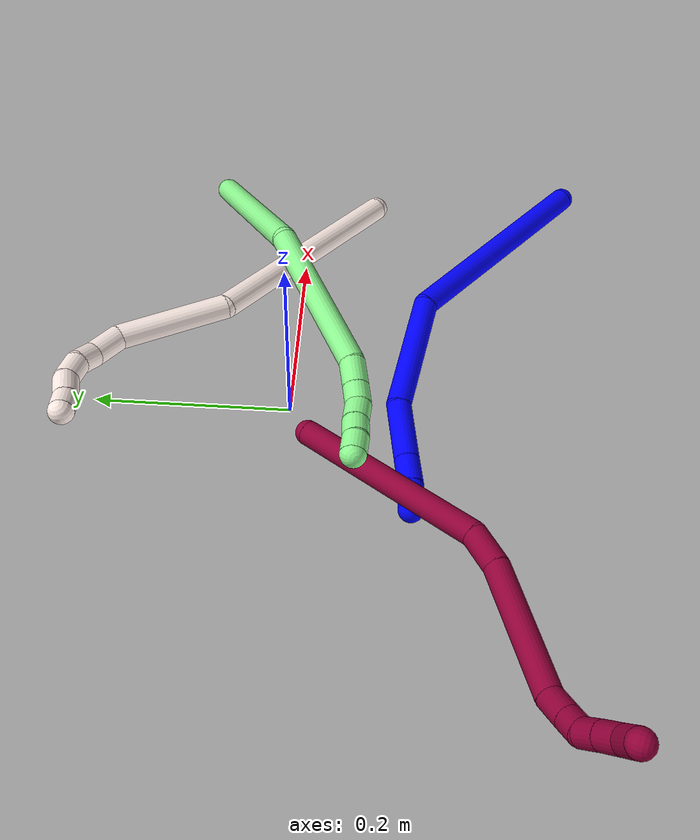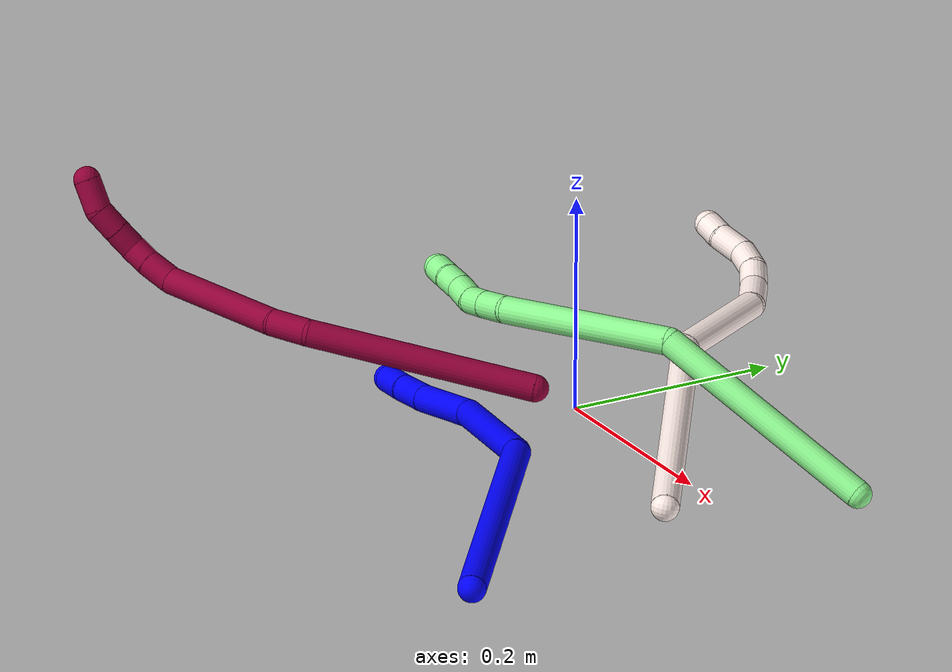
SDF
<sdf version="1.7">
 <world name="default">
  <model name="photoneo_s_sensor">
   <static>1</static>
   <pose>0 0 2 1.57079 1.57079 3.14159</pose>
   <link name="link">
    <inertial><mass>0.1</mass></inertial>
    <sensor name="sensor" type="depth">
     <update_rate>30</update_rate>
     <camera>
      <horizontal_fov>1.22</horizontal_fov>
      <image><width>1920</width><height>1200</height><format>B8G8R8</format></image>
      <clip><near>0.1</near><far>4</far></clip>
      <depth_camera><output>points</output></depth_camera>
     </camera>
     <plugin name="camera_plugin" filename="libgazebo_ros_depth_camera.so">
      <baseline>0.2</baseline>
      <alwaysOn>1</alwaysOn>
      <updateRate>0.0</updateRate>
      <cameraName>camera_ir</cameraName>
      <imageTopicName>/camera/color/image_raw</imageTopicName>
      <cameraInfoTopicName>/camera/color/camera_info</cameraInfoTopicName>
      <depthImageTopicName>/camera/depth/image_raw</depthImageTopicName>
      <depthImageCameraInfoTopicName>/camera/depth/camera_info</depthImageCameraInfoTopicName>
      <pointCloudTopicName>/camera/depth/points</pointCloudTopicName>
      <frameName>fr_optical</frameName>
      <pointCloudCutoff>0.1</pointCloudCutoff>
      <pointCloudCutoffMax>2.0</pointCloudCutoffMax>
      <distortionK1>0</distortionK1>
      <distortionK2>0</distortionK2>
      <distortionK3>0</distortionK3>
      <distortionT1>0</distortionT1>
      <distortionT2>0</distortionT2>
      <CxPrime>0</CxPrime>
      <Cx>0</Cx>
      <Cy>0</Cy>
      <focalLength>0</focalLength>
      <hackBaseline>0</hackBaseline>
     </plugin>
    </sensor>
   </link>
  </model>
  <model name="bin">
   <static>1</static>
   <link name="bottom">
    <collision name="collision-bottom">
     <pose>0 0 -0.01 0 -0 0</pose>
     <geometry><box><size>0.8 0.6 0.02</size></box></geometry>
     <surface>
      <friction><ode><mu>100</mu><mu2>100</mu2></ode></friction>
      <contact><collide_bitmask>65535</collide_bitmask></contact>
     </surface>
    </collision>
   </link>
   <link name="west_wall">
    <collision name="collision-west_wall">
     <pose>-0.41 0 0.1 0 -0 0</pose>
     <geometry><box><size>0.02 0.6 0.2</size></box></geometry>
     <surface>
      <friction><ode><mu>100</mu><mu2>100</mu2></ode></friction>
      <contact><collide_bitmask>65535</collide_bitmask></contact>
     </surface>
    </collision>
   </link>
   <link name="east_wall">
    <collision name="collision-east_wall">
     <pose>0.41 0 0.1 0 -0 0</pose>
     <geometry><box><size>0.02 0.6 0.2</size></box></geometry>
     <surface>
      <friction><ode><mu>100</mu><mu2>100</mu2></ode></friction>
      <contact><collide_bitmask>65535</collide_bitmask></contact>
     </surface>
    </collision>
   </link>
   <link name="south_wall">
    <collision name="collision-south_wall">
     <pose>0 -0.31 0.1 0 -0 0</pose>
     <geometry><box><size>0.8 0.02 0.2</size></box></geometry>
     <surface>
      <friction><ode><mu>100</mu><mu2>100</mu2></ode></friction>
      <contact><collide_bitmask>65535</collide_bitmask></contact>
     </surface>
    </collision>
   </link>
   <link name="north_wall">
    <collision name="collision-north_wall">
     <pose>0 0.31 0.1 0 -0 0</pose>
     <geometry><box><size>0.8 0.02 0.2</size></box></geometry>
     <surface>
      <friction><ode><mu>100</mu><mu2>100</mu2></ode></friction>
      <contact><collide_bitmask>65535</collide_bitmask></contact>
     </surface>
    </collision>
   </link>
  </model>
  <model name="1">
   <static>0</static>
   <link name="1">
    <collision name="collision-cylinder-e_1_1_4">
     <pose>0.025515 0.014249 -0.1216 -3.02494 0.205457 -2.1109</pose>
     <geometry><cylinder><radius>0.0125</radius><length>0.250125</length></cylinder></geometry>
     <surface>
      <friction><ode><mu>1.16</mu><mu2>1.16</mu2><slip1>0</slip1><slip2>0</slip2></ode></friction>
      <contact><ode><kp>1e+06</kp><kd>1</kd><max_vel>0</max_vel><min_depth>0.001</min_depth></ode></contact>
     </surface>
    </collision>
    <visual name="visual-cylinder-e_1_1_4">
     <pose>0.025515 0.014249 -0.1216 -3.02494 0.205457 -2.1109</pose>
     <geometry><cylinder><radius>0.0125</radius><length>0.250125</length></cylinder></geometry>
     <material><ambient>0 0 1 1</ambient></material>
    </visual>
    <collision name="collision-cylinder-e_2_4_5">
     <pose>0.032211 0.027229 -0.304755 3.12096 -0.29664 -3.00372</pose>
     <geometry><cylinder><radius>0.0125</radius><length>0.128759</length></cylinder></geometry>
     <surface>
      <friction><ode><mu>1.16</mu><mu2>1.16</mu2><slip1>0</slip1><slip2>0</slip2></ode></friction>
      <contact><ode><kp>1e+06</kp><kd>1</kd><max_vel>0</max_vel><min_depth>0.001</min_depth></ode></contact>
     </surface>
    </collision>
    <visual name="visual-cylinder-e_2_4_5">
     <pose>0.032211 0.027229 -0.304755 3.12096 -0.29664 -3.00372</pose>
     <geometry><cylinder><radius>0.0125</radius><length>0.128759</length></cylinder></geometry>
     <material><ambient>0 0 1 1</ambient></material>
    </visual>
    <collision name="collision-cylinder-e_3_5_6">
     <pose>-0.005569 0.026463 -0.391741 -3.12174 -0.640577 3.08176</pose>
     <geometry><cylinder><radius>0.0125</radius><length>0.063452</length></cylinder></geometry>
     <surface>
      <friction><ode><mu>1.16</mu><mu2>1.16</mu2><slip1>0</slip1><slip2>0</slip2></ode></friction>
      <contact><ode><kp>1e+06</kp><kd>1</kd><max_vel>0</max_vel><min_depth>0.001</min_depth></ode></contact>
     </surface>
    </collision>
    <visual name="visual-cylinder-e_3_5_6">
     <pose>-0.005569 0.026463 -0.391741 -3.12174 -0.640577 3.08176</pose>
     <geometry><cylinder><radius>0.0125</radius><length>0.063452</length></cylinder></geometry>
     <material><ambient>0 0 1 1</ambient></material>
    </visual>
    <collision name="collision-cylinder-e_4_6_7">
     <pose>-0.033254 0.028847 -0.429158 -2.9861 -0.623425 2.66714</pose>
     <geometry><cylinder><radius>0.0125</radius><length>0.029885</length></cylinder></geometry>
     <surface>
      <friction><ode><mu>1.16</mu><mu2>1.16</mu2><slip1>0</slip1><slip2>0</slip2></ode></friction>
      <contact><ode><kp>1e+06</kp><kd>1</kd><max_vel>0</max_vel><min_depth>0.001</min_depth></ode></contact>
     </surface>
    </collision>
    <visual name="visual-cylinder-e_4_6_7">
     <pose>-0.033254 0.028847 -0.429158 -2.9861 -0.623425 2.66714</pose>
     <geometry><cylinder><radius>0.0125</radius><length>0.029885</length></cylinder></geometry>
     <material><ambient>0 0 1 1</ambient></material>
    </visual>
    <collision name="collision-cylinder-e_5_7_2">
     <pose>-0.048687 0.032087 -0.453228 -3.02945 -0.504123 2.71242</pose>
     <geometry><cylinder><radius>0.0125</radius><length>0.027779</length></cylinder></geometry>
     <surface>
      <friction><ode><mu>1.16</mu><mu2>1.16</mu2><slip1>0</slip1><slip2>0</slip2></ode></friction>
      <contact><ode><kp>1e+06</kp><kd>1</kd><max_vel>0</max_vel><min_depth>0.001</min_depth></ode></contact>
     </surface>
    </collision>
    <visual name="visual-cylinder-e_5_7_2">
     <pose>-0.048687 0.032087 -0.453228 -3.02945 -0.504123 2.71242</pose>
     <geometry><cylinder><radius>0.0125</radius><length>0.027779</length></cylinder></geometry>
     <material><ambient>0 0 1 1</ambient></material>
    </visual>
    <collision name="collision-sphere-2">
     <pose>-0.055396 0.033448 -0.465313 0 -0 0</pose>
     <geometry><sphere><radius>0.0125</radius></sphere></geometry>
     <surface>
      <friction><ode><mu>1.16</mu><mu2>1.16</mu2><slip1>0</slip1><slip2>0</slip2></ode></friction>
      <contact><ode><kp>1e+06</kp><kd>1</kd><max_vel>0</max_vel><min_depth>0.001</min_depth></ode></contact>
     </surface>
    </collision>
    <visual name="visual-sphere-2">
     <pose>-0.055396 0.033448 -0.465313 0 -0 0</pose>
     <geometry><sphere><radius>0.0125</radius></sphere></geometry>
     <material><ambient>0 0 1 1</ambient></material>
    </visual>
    <collision name="collision-sphere-7">
     <pose>-0.041978 0.030726 -0.441143 0 -0 0</pose>
     <geometry><sphere><radius>0.0125</radius></sphere></geometry>
     <surface>
      <friction><ode><mu>1.16</mu><mu2>1.16</mu2><slip1>0</slip1><slip2>0</slip2></ode></friction>
      <contact><ode><kp>1e+06</kp><kd>1</kd><max_vel>0</max_vel><min_depth>0.001</min_depth></ode></contact>
     </surface>
    </collision>
    <visual name="visual-sphere-7">
     <pose>-0.041978 0.030726 -0.441143 0 -0 0</pose>
     <geometry><sphere><radius>0.0125</radius></sphere></geometry>
     <material><ambient>0 0 1 1</ambient></material>
    </visual>
    <collision name="collision-sphere-6">
     <pose>-0.024531 0.026968 -0.417173 0 -0 0</pose>
     <geometry><sphere><radius>0.0125</radius></sphere></geometry>
     <surface>
      <friction><ode><mu>1.16</mu><mu2>1.16</mu2><slip1>0</slip1><slip2>0</slip2></ode></friction>
      <contact><ode><kp>1e+06</kp><kd>1</kd><max_vel>0</max_vel><min_depth>0.001</min_depth></ode></contact>
     </surface>
    </collision>
    <visual name="visual-sphere-6">
     <pose>-0.024531 0.026968 -0.417173 0 -0 0</pose>
     <geometry><sphere><radius>0.0125</radius></sphere></geometry>
     <material><ambient>0 0 1 1</ambient></material>
    </visual>
    <collision name="collision-sphere-5">
     <pose>0.013392 0.025958 -0.36631 0 -0 0</pose>
     <geometry><sphere><radius>0.0125</radius></sphere></geometry>
     <surface>
      <friction><ode><mu>1.16</mu><mu2>1.16</mu2><slip1>0</slip1><slip2>0</slip2></ode></friction>
      <contact><ode><kp>1e+06</kp><kd>1</kd><max_vel>0</max_vel><min_depth>0.001</min_depth></ode></contact>
     </surface>
    </collision>
    <visual name="visual-sphere-5">
     <pose>0.013392 0.025958 -0.36631 0 -0 0</pose>
     <geometry><sphere><radius>0.0125</radius></sphere></geometry>
     <material><ambient>0 0 1 1</ambient></material>
    </visual>
    <collision name="collision-sphere-1">
     <geometry><sphere><radius>0.0125</radius></sphere></geometry>
     <surface>
      <friction><ode><mu>1.16</mu><mu2>1.16</mu2><slip1>0</slip1><slip2>0</slip2></ode></friction>
      <contact><ode><kp>1e+06</kp><kd>1</kd><max_vel>0</max_vel><min_depth>0.001</min_depth></ode></contact>
     </surface>
    </collision>
    <visual name="visual-sphere-1">
     <geometry><sphere><radius>0.0125</radius></sphere></geometry>
     <material><ambient>0 0 1 1</ambient></material>
    </visual>
    <collision name="collision-sphere-4">
     <pose>0.051029 0.028499 -0.243201 0 -0 0</pose>
     <geometry><sphere><radius>0.0125</radius></sphere></geometry>
     <surface>
      <friction><ode><mu>1.16</mu><mu2>1.16</mu2><slip1>0</slip1><slip2>0</slip2></ode></friction>
      <contact><ode><kp>1e+06</kp><kd>1</kd><max_vel>0</max_vel><min_depth>0.001</min_depth></ode></contact>
     </surface>
    </collision>
    <visual name="visual-sphere-4">
     <pose>0.051029 0.028499 -0.243201 0 -0 0</pose>
     <geometry><sphere><radius>0.0125</radius></sphere></geometry>
     <material><ambient>0 0 1 1</ambient></material>
    </visual>
    <inertial>
     <pose>0.015659 0.021005 -0.239855 0 -0 0</pose>
     <mass>0.5</mass>
     <inertia>
      <ixx>-0.001986</ixx>
      <ixy>0</ixy>
      <ixz>0</ixz>
      <iyy>-0.000213</iyy>
      <iyz>0</iyz>
      <izz>-0.000381</izz>
     </inertia>
    </inertial>
   </link>
   <pose>0.32193 -0.287919 0.011499 1.51405 -0.110709 1.09783</pose>
  </model>
  <model name="8">
   <static>0</static>
   <link name="8">
    <collision name="collision-cylinder-e_1_1_4">
     <pose>-0.021924 -0.019203 0.100598 0.188623 -0.210888 -0.020022</pose>
     <geometry><cylinder><radius>0.0125</radius><length>0.20947</length></cylinder></geometry>
     <surface>
      <friction><ode><mu>1.16</mu><mu2>1.16</mu2><slip1>0</slip1><slip2>0</slip2></ode></friction>
      <contact><ode><kp>1e+06</kp><kd>1</kd><max_vel>0</max_vel><min_depth>0.001</min_depth></ode></contact>
     </surface>
    </collision>
    <visual name="visual-cylinder-e_1_1_4">
     <pose>-0.021924 -0.019203 0.100598 0.188623 -0.210888 -0.020022</pose>
     <geometry><cylinder><radius>0.0125</radius><length>0.20947</length></cylinder></geometry>
     <material><ambient>0.584314 0 0.227451 1</ambient></material>
    </visual>
    <collision name="collision-cylinder-e_2_4_5">
     <pose>-0.051807 -0.046811 0.216371 0.505797 -0.430161 -0.112794</pose>
     <geometry><cylinder><radius>0.0125</radius><length>0.038169</length></cylinder></geometry>
     <surface>
      <friction><ode><mu>1.16</mu><mu2>1.16</mu2><slip1>0</slip1><slip2>0</slip2></ode></friction>
      <contact><ode><kp>1e+06</kp><kd>1</kd><max_vel>0</max_vel><min_depth>0.001</min_depth></ode></contact>
     </surface>
    </collision>
    <visual name="visual-cylinder-e_2_4_5">
     <pose>-0.051807 -0.046811 0.216371 0.505797 -0.430161 -0.112794</pose>
     <geometry><cylinder><radius>0.0125</radius><length>0.038169</length></cylinder></geometry>
     <material><ambient>0.584314 0 0.227451 1</ambient></material>
    </visual>
    <collision name="collision-cylinder-e_3_5_6">
     <pose>-0.095044 -0.088188 0.272984 0.672111 -0.587667 -0.210612</pose>
     <geometry><cylinder><radius>0.0125</radius><length>0.127265</length></cylinder></geometry>
     <surface>
      <friction><ode><mu>1.16</mu><mu2>1.16</mu2><slip1>0</slip1><slip2>0</slip2></ode></friction>
      <contact><ode><kp>1e+06</kp><kd>1</kd><max_vel>0</max_vel><min_depth>0.001</min_depth></ode></contact>
     </surface>
    </collision>
    <visual name="visual-cylinder-e_3_5_6">
     <pose>-0.095044 -0.088188 0.272984 0.672111 -0.587667 -0.210612</pose>
     <geometry><cylinder><radius>0.0125</radius><length>0.127265</length></cylinder></geometry>
     <material><ambient>0.584314 0 0.227451 1</ambient></material>
    </visual>
    <collision name="collision-cylinder-e_4_6_7">
     <pose>-0.13902 -0.122887 0.325411 0.155785 -0.663596 -0.053769</pose>
     <geometry><cylinder><radius>0.0125</radius><length>0.028238</length></cylinder></geometry>
     <surface>
      <friction><ode><mu>1.16</mu><mu2>1.16</mu2><slip1>0</slip1><slip2>0</slip2></ode></friction>
      <contact><ode><kp>1e+06</kp><kd>1</kd><max_vel>0</max_vel><min_depth>0.001</min_depth></ode></contact>
     </surface>
    </collision>
    <visual name="visual-cylinder-e_4_6_7">
     <pose>-0.13902 -0.122887 0.325411 0.155785 -0.663596 -0.053769</pose>
     <geometry><cylinder><radius>0.0125</radius><length>0.028238</length></cylinder></geometry>
     <material><ambient>0.584314 0 0.227451 1</ambient></material>
    </visual>
    <collision name="collision-cylinder-e_5_7_8">
     <pose>-0.154627 -0.124879 0.343941 0.03526 -0.741446 -0.013706</pose>
     <geometry><cylinder><radius>0.0125</radius><length>0.020465</length></cylinder></geometry>
     <surface>
      <friction><ode><mu>1.16</mu><mu2>1.16</mu2><slip1>0</slip1><slip2>0</slip2></ode></friction>
      <contact><ode><kp>1e+06</kp><kd>1</kd><max_vel>0</max_vel><min_depth>0.001</min_depth></ode></contact>
     </surface>
    </collision>
    <visual name="visual-cylinder-e_5_7_8">
     <pose>-0.154627 -0.124879 0.343941 0.03526 -0.741446 -0.013706</pose>
     <geometry><cylinder><radius>0.0125</radius><length>0.020465</length></cylinder></geometry>
     <material><ambient>0.584314 0 0.227451 1</ambient></material>
    </visual>
    <collision name="collision-cylinder-e_6_8_9">
     <pose>-0.166591 -0.120808 0.360441 -0.450813 -0.469811 0.109645</pose>
     <geometry><cylinder><radius>0.0125</radius><length>0.022326</length></cylinder></geometry>
     <surface>
      <friction><ode><mu>1.16</mu><mu2>1.16</mu2><slip1>0</slip1><slip2>0</slip2></ode></friction>
      <contact><ode><kp>1e+06</kp><kd>1</kd><max_vel>0</max_vel><min_depth>0.001</min_depth></ode></contact>
     </surface>
    </collision>
    <visual name="visual-cylinder-e_6_8_9">
     <pose>-0.166591 -0.120808 0.360441 -0.450813 -0.469811 0.109645</pose>
     <geometry><cylinder><radius>0.0125</radius><length>0.022326</length></cylinder></geometry>
     <material><ambient>0.584314 0 0.227451 1</ambient></material>
    </visual>
    <collision name="collision-cylinder-e_7_9_10">
     <pose>-0.177656 -0.112042 0.37904 -0.43077 -0.515539 0.115228</pose>
     <geometry><cylinder><radius>0.0125</radius><length>0.024387</length></cylinder></geometry>
     <surface>
      <friction><ode><mu>1.16</mu><mu2>1.16</mu2><slip1>0</slip1><slip2>0</slip2></ode></friction>
      <contact><ode><kp>1e+06</kp><kd>1</kd><max_vel>0</max_vel><min_depth>0.001</min_depth></ode></contact>
     </surface>
    </collision>
    <visual name="visual-cylinder-e_7_9_10">
     <pose>-0.177656 -0.112042 0.37904 -0.43077 -0.515539 0.115228</pose>
     <geometry><cylinder><radius>0.0125</radius><length>0.024387</length></cylinder></geometry>
     <material><ambient>0.584314 0 0.227451 1</ambient></material>
    </visual>
    <collision name="collision-cylinder-e_8_10_2">
     <pose>-0.19466 -0.100921 0.396071 -0.735709 -0.834139 0.338247</pose>
     <geometry><cylinder><radius>0.0125</radius><length>0.029681</length></cylinder></geometry>
     <surface>
      <friction><ode><mu>1.16</mu><mu2>1.16</mu2><slip1>0</slip1><slip2>0</slip2></ode></friction>
      <contact><ode><kp>1e+06</kp><kd>1</kd><max_vel>0</max_vel><min_depth>0.001</min_depth></ode></contact>
     </surface>
    </collision>
    <visual name="visual-cylinder-e_8_10_2">
     <pose>-0.19466 -0.100921 0.396071 -0.735709 -0.834139 0.338247</pose>
     <geometry><cylinder><radius>0.0125</radius><length>0.029681</length></cylinder></geometry>
     <material><ambient>0.584314 0 0.227451 1</ambient></material>
    </visual>
    <collision name="collision-sphere-2">
     <pose>-0.205653 -0.09423 0.403462 0 -0 0</pose>
     <geometry><sphere><radius>0.0125</radius></sphere></geometry>
     <surface>
      <friction><ode><mu>1.16</mu><mu2>1.16</mu2><slip1>0</slip1><slip2>0</slip2></ode></friction>
      <contact><ode><kp>1e+06</kp><kd>1</kd><max_vel>0</max_vel><min_depth>0.001</min_depth></ode></contact>
     </surface>
    </collision>
    <visual name="visual-sphere-2">
     <pose>-0.205653 -0.09423 0.403462 0 -0 0</pose>
     <geometry><sphere><radius>0.0125</radius></sphere></geometry>
     <material><ambient>0.584314 0 0.227451 1</ambient></material>
    </visual>
    <collision name="collision-sphere-10">
     <pose>-0.183667 -0.107612 0.388679 0 -0 0</pose>
     <geometry><sphere><radius>0.0125</radius></sphere></geometry>
     <surface>
      <friction><ode><mu>1.16</mu><mu2>1.16</mu2><slip1>0</slip1><slip2>0</slip2></ode></friction>
      <contact><ode><kp>1e+06</kp><kd>1</kd><max_vel>0</max_vel><min_depth>0.001</min_depth></ode></contact>
     </surface>
    </collision>
    <visual name="visual-sphere-10">
     <pose>-0.183667 -0.107612 0.388679 0 -0 0</pose>
     <geometry><sphere><radius>0.0125</radius></sphere></geometry>
     <material><ambient>0.584314 0 0.227451 1</ambient></material>
    </visual>
    <collision name="collision-sphere-9">
     <pose>-0.171645 -0.116472 0.3694 0 -0 0</pose>
     <geometry><sphere><radius>0.0125</radius></sphere></geometry>
     <surface>
      <friction><ode><mu>1.16</mu><mu2>1.16</mu2><slip1>0</slip1><slip2>0</slip2></ode></friction>
      <contact><ode><kp>1e+06</kp><kd>1</kd><max_vel>0</max_vel><min_depth>0.001</min_depth></ode></contact>
     </surface>
    </collision>
    <visual name="visual-sphere-9">
     <pose>-0.171645 -0.116472 0.3694 0 -0 0</pose>
     <geometry><sphere><radius>0.0125</radius></sphere></geometry>
     <material><ambient>0.584314 0 0.227451 1</ambient></material>
    </visual>
    <collision name="collision-sphere-4">
     <pose>-0.043848 -0.038407 0.201197 0 -0 0</pose>
     <geometry><sphere><radius>0.0125</radius></sphere></geometry>
     <surface>
      <friction><ode><mu>1.16</mu><mu2>1.16</mu2><slip1>0</slip1><slip2>0</slip2></ode></friction>
      <contact><ode><kp>1e+06</kp><kd>1</kd><max_vel>0</max_vel><min_depth>0.001</min_depth></ode></contact>
     </surface>
    </collision>
    <visual name="visual-sphere-4">
     <pose>-0.043848 -0.038407 0.201197 0 -0 0</pose>
     <geometry><sphere><radius>0.0125</radius></sphere></geometry>
     <material><ambient>0.584314 0 0.227451 1</ambient></material>
    </visual>
    <collision name="collision-sphere-1">
     <geometry><sphere><radius>0.0125</radius></sphere></geometry>
     <surface>
      <friction><ode><mu>1.16</mu><mu2>1.16</mu2><slip1>0</slip1><slip2>0</slip2></ode></friction>
      <contact><ode><kp>1e+06</kp><kd>1</kd><max_vel>0</max_vel><min_depth>0.001</min_depth></ode></contact>
     </surface>
    </collision>
    <visual name="visual-sphere-1">
     <geometry><sphere><radius>0.0125</radius></sphere></geometry>
     <material><ambient>0.584314 0 0.227451 1</ambient></material>
    </visual>
    <collision name="collision-sphere-8">
     <pose>-0.161537 -0.125145 0.351482 0 -0 0</pose>
     <geometry><sphere><radius>0.0125</radius></sphere></geometry>
     <surface>
      <friction><ode><mu>1.16</mu><mu2>1.16</mu2><slip1>0</slip1><slip2>0</slip2></ode></friction>
      <contact><ode><kp>1e+06</kp><kd>1</kd><max_vel>0</max_vel><min_depth>0.001</min_depth></ode></contact>
     </surface>
    </collision>
    <visual name="visual-sphere-8">
     <pose>-0.161537 -0.125145 0.351482 0 -0 0</pose>
     <geometry><sphere><radius>0.0125</radius></sphere></geometry>
     <material><ambient>0.584314 0 0.227451 1</ambient></material>
    </visual>
    <collision name="collision-sphere-5">
     <pose>-0.059765 -0.055215 0.231545 0 -0 0</pose>
     <geometry><sphere><radius>0.0125</radius></sphere></geometry>
     <surface>
      <friction><ode><mu>1.16</mu><mu2>1.16</mu2><slip1>0</slip1><slip2>0</slip2></ode></friction>
      <contact><ode><kp>1e+06</kp><kd>1</kd><max_vel>0</max_vel><min_depth>0.001</min_depth></ode></contact>
     </surface>
    </collision>
    <visual name="visual-sphere-5">
     <pose>-0.059765 -0.055215 0.231545 0 -0 0</pose>
     <geometry><sphere><radius>0.0125</radius></sphere></geometry>
     <material><ambient>0.584314 0 0.227451 1</ambient></material>
    </visual>
    <collision name="collision-sphere-6">
     <pose>-0.130323 -0.121162 0.314424 0 -0 0</pose>
     <geometry><sphere><radius>0.0125</radius></sphere></geometry>
     <surface>
      <friction><ode><mu>1.16</mu><mu2>1.16</mu2><slip1>0</slip1><slip2>0</slip2></ode></friction>
      <contact><ode><kp>1e+06</kp><kd>1</kd><max_vel>0</max_vel><min_depth>0.001</min_depth></ode></contact>
     </surface>
    </collision>
    <visual name="visual-sphere-6">
     <pose>-0.130323 -0.121162 0.314424 0 -0 0</pose>
     <geometry><sphere><radius>0.0125</radius></sphere></geometry>
     <material><ambient>0.584314 0 0.227451 1</ambient></material>
    </visual>
    <collision name="collision-sphere-7">
     <pose>-0.147716 -0.124613 0.336399 0 -0 0</pose>
     <geometry><sphere><radius>0.0125</radius></sphere></geometry>
     <surface>
      <friction><ode><mu>1.16</mu><mu2>1.16</mu2><slip1>0</slip1><slip2>0</slip2></ode></friction>
      <contact><ode><kp>1e+06</kp><kd>1</kd><max_vel>0</max_vel><min_depth>0.001</min_depth></ode></contact>
     </surface>
    </collision>
    <visual name="visual-sphere-7">
     <pose>-0.147716 -0.124613 0.336399 0 -0 0</pose>
     <geometry><sphere><radius>0.0125</radius></sphere></geometry>
     <material><ambient>0.584314 0 0.227451 1</ambient></material>
    </visual>
    <inertial>
     <pose>-0.07917 -0.062966 0.218692 0 -0 0</pose>
     <mass>0.5</mass>
     <inertia>
      <ixx>0.000854</ixx>
      <ixy>0</ixy>
      <ixz>0</ixz>
      <iyy>0.000872</iyy>
      <iyz>0</iyz>
      <izz>0.000535</izz>
     </inertia>
    </inertial>
   </link>
   <pose>-0.035024 -0.021068 0.011501 1.29869 0.612504 -0.558587</pose>
  </model>
  <model name="11">
   <static>0</static>
   <link name="11">
    <collision name="collision-cylinder-e_1_1_4">
     <pose>-0.04611 0.10828 -0.04829 -1.9903 -0.370916 0.562849</pose>
     <geometry><cylinder><radius>0.0125</radius><length>0.254423</length></cylinder></geometry>
     <surface>
      <friction><ode><mu>1.16</mu><mu2>1.16</mu2><slip1>0</slip1><slip2>0</slip2></ode></friction>
      <contact><ode><kp>1e+06</kp><kd>1</kd><max_vel>0</max_vel><min_depth>0.001</min_depth></ode></contact>
     </surface>
    </collision>
    <visual name="visual-cylinder-e_1_1_4">
     <pose>-0.04611 0.10828 -0.04829 -1.9903 -0.370916 0.562849</pose>
     <geometry><cylinder><radius>0.0125</radius><length>0.254423</length></cylinder></geometry>
     <material><ambient>1 0.933333 0.909804 1</ambient></material>
    </visual>
    <collision name="collision-cylinder-e_2_4_5">
     <pose>-0.135327 0.248547 -0.112673 -2.03692 -0.877647 1.30167</pose>
     <geometry><cylinder><radius>0.0125</radius><length>0.112076</length></cylinder></geometry>
     <surface>
      <friction><ode><mu>1.16</mu><mu2>1.16</mu2><slip1>0</slip1><slip2>0</slip2></ode></friction>
      <contact><ode><kp>1e+06</kp><kd>1</kd><max_vel>0</max_vel><min_depth>0.001</min_depth></ode></contact>
     </surface>
    </collision>
    <visual name="visual-cylinder-e_2_4_5">
     <pose>-0.135327 0.248547 -0.112673 -2.03692 -0.877647 1.30167</pose>
     <geometry><cylinder><radius>0.0125</radius><length>0.112076</length></cylinder></geometry>
     <material><ambient>1 0.933333 0.909804 1</ambient></material>
    </visual>
    <collision name="collision-cylinder-e_3_5_6">
     <pose>-0.184869 0.295202 -0.134295 -1.93133 -0.389518 0.555617</pose>
     <geometry><cylinder><radius>0.0125</radius><length>0.033891</length></cylinder></geometry>
     <surface>
      <friction><ode><mu>1.16</mu><mu2>1.16</mu2><slip1>0</slip1><slip2>0</slip2></ode></friction>
      <contact><ode><kp>1e+06</kp><kd>1</kd><max_vel>0</max_vel><min_depth>0.001</min_depth></ode></contact>
     </surface>
    </collision>
    <visual name="visual-cylinder-e_3_5_6">
     <pose>-0.184869 0.295202 -0.134295 -1.93133 -0.389518 0.555617</pose>
     <geometry><cylinder><radius>0.0125</radius><length>0.033891</length></cylinder></geometry>
     <material><ambient>1 0.933333 0.909804 1</ambient></material>
    </visual>
    <collision name="collision-cylinder-e_4_6_7">
     <pose>-0.193729 0.319268 -0.146062 -2.15668 -0.211821 0.391202</pose>
     <geometry><cylinder><radius>0.0125</radius><length>0.023073</length></cylinder></geometry>
     <surface>
      <friction><ode><mu>1.16</mu><mu2>1.16</mu2><slip1>0</slip1><slip2>0</slip2></ode></friction>
      <contact><ode><kp>1e+06</kp><kd>1</kd><max_vel>0</max_vel><min_depth>0.001</min_depth></ode></contact>
     </surface>
    </collision>
    <visual name="visual-cylinder-e_4_6_7">
     <pose>-0.193729 0.319268 -0.146062 -2.15668 -0.211821 0.391202</pose>
     <geometry><cylinder><radius>0.0125</radius><length>0.023073</length></cylinder></geometry>
     <material><ambient>1 0.933333 0.909804 1</ambient></material>
    </visual>
    <collision name="collision-cylinder-e_5_7_8">
     <pose>-0.19554 0.341245 -0.156679 -1.90588 0.046081 -0.06483</pose>
     <geometry><cylinder><radius>0.0125</radius><length>0.02667</length></cylinder></geometry>
     <surface>
      <friction><ode><mu>1.16</mu><mu2>1.16</mu2><slip1>0</slip1><slip2>0</slip2></ode></friction>
      <contact><ode><kp>1e+06</kp><kd>1</kd><max_vel>0</max_vel><min_depth>0.001</min_depth></ode></contact>
     </surface>
    </collision>
    <visual name="visual-cylinder-e_5_7_8">
     <pose>-0.19554 0.341245 -0.156679 -1.90588 0.046081 -0.06483</pose>
     <geometry><cylinder><radius>0.0125</radius><length>0.02667</length></cylinder></geometry>
     <material><ambient>1 0.933333 0.909804 1</ambient></material>
    </visual>
    <collision name="collision-cylinder-e_6_8_9">
     <pose>-0.188514 0.366488 -0.164779 -1.8565 0.452245 -0.596378</pose>
     <geometry><cylinder><radius>0.0125</radius><length>0.029346</length></cylinder></geometry>
     <surface>
      <friction><ode><mu>1.16</mu><mu2>1.16</mu2><slip1>0</slip1><slip2>0</slip2></ode></friction>
      <contact><ode><kp>1e+06</kp><kd>1</kd><max_vel>0</max_vel><min_depth>0.001</min_depth></ode></contact>
     </surface>
    </collision>
    <visual name="visual-cylinder-e_6_8_9">
     <pose>-0.188514 0.366488 -0.164779 -1.8565 0.452245 -0.596378</pose>
     <geometry><cylinder><radius>0.0125</radius><length>0.029346</length></cylinder></geometry>
     <material><ambient>1 0.933333 0.909804 1</ambient></material>
    </visual>
    <collision name="collision-cylinder-e_7_9_2">
     <pose>-0.17927 0.388451 -0.171779 -1.90988 0.279599 -0.39257</pose>
     <geometry><cylinder><radius>0.0125</radius><length>0.020521</length></cylinder></geometry>
     <surface>
      <friction><ode><mu>1.16</mu><mu2>1.16</mu2><slip1>0</slip1><slip2>0</slip2></ode></friction>
      <contact><ode><kp>1e+06</kp><kd>1</kd><max_vel>0</max_vel><min_depth>0.001</min_depth></ode></contact>
     </surface>
    </collision>
    <visual name="visual-cylinder-e_7_9_2">
     <pose>-0.17927 0.388451 -0.171779 -1.90988 0.279599 -0.39257</pose>
     <geometry><cylinder><radius>0.0125</radius><length>0.020521</length></cylinder></geometry>
     <material><ambient>1 0.933333 0.909804 1</ambient></material>
    </visual>
    <collision name="collision-sphere-2">
     <pose>-0.176439 0.397752 -0.175059 0 -0 0</pose>
     <geometry><sphere><radius>0.0125</radius></sphere></geometry>
     <surface>
      <friction><ode><mu>1.16</mu><mu2>1.16</mu2><slip1>0</slip1><slip2>0</slip2></ode></friction>
      <contact><ode><kp>1e+06</kp><kd>1</kd><max_vel>0</max_vel><min_depth>0.001</min_depth></ode></contact>
     </surface>
    </collision>
    <visual name="visual-sphere-2">
     <pose>-0.176439 0.397752 -0.175059 0 -0 0</pose>
     <geometry><sphere><radius>0.0125</radius></sphere></geometry>
     <material><ambient>1 0.933333 0.909804 1</ambient></material>
    </visual>
    <collision name="collision-sphere-9">
     <pose>-0.182102 0.379151 -0.168498 0 -0 0</pose>
     <geometry><sphere><radius>0.0125</radius></sphere></geometry>
     <surface>
      <friction><ode><mu>1.16</mu><mu2>1.16</mu2><slip1>0</slip1><slip2>0</slip2></ode></friction>
      <contact><ode><kp>1e+06</kp><kd>1</kd><max_vel>0</max_vel><min_depth>0.001</min_depth></ode></contact>
     </surface>
    </collision>
    <visual name="visual-sphere-9">
     <pose>-0.182102 0.379151 -0.168498 0 -0 0</pose>
     <geometry><sphere><radius>0.0125</radius></sphere></geometry>
     <material><ambient>1 0.933333 0.909804 1</ambient></material>
    </visual>
    <collision name="collision-sphere-4">
     <pose>-0.09222 0.21656 -0.096581 0 -0 0</pose>
     <geometry><sphere><radius>0.0125</radius></sphere></geometry>
     <surface>
      <friction><ode><mu>1.16</mu><mu2>1.16</mu2><slip1>0</slip1><slip2>0</slip2></ode></friction>
      <contact><ode><kp>1e+06</kp><kd>1</kd><max_vel>0</max_vel><min_depth>0.001</min_depth></ode></contact>
     </surface>
    </collision>
    <visual name="visual-sphere-4">
     <pose>-0.09222 0.21656 -0.096581 0 -0 0</pose>
     <geometry><sphere><radius>0.0125</radius></sphere></geometry>
     <material><ambient>1 0.933333 0.909804 1</ambient></material>
    </visual>
    <collision name="collision-sphere-1">
     <geometry><sphere><radius>0.0125</radius></sphere></geometry>
     <surface>
      <friction><ode><mu>1.16</mu><mu2>1.16</mu2><slip1>0</slip1><slip2>0</slip2></ode></friction>
      <contact><ode><kp>1e+06</kp><kd>1</kd><max_vel>0</max_vel><min_depth>0.001</min_depth></ode></contact>
     </surface>
    </collision>
    <visual name="visual-sphere-1">
     <geometry><sphere><radius>0.0125</radius></sphere></geometry>
     <material><ambient>1 0.933333 0.909804 1</ambient></material>
    </visual>
    <collision name="collision-sphere-8">
     <pose>-0.194926 0.353825 -0.161059 0 -0 0</pose>
     <geometry><sphere><radius>0.0125</radius></sphere></geometry>
     <surface>
      <friction><ode><mu>1.16</mu><mu2>1.16</mu2><slip1>0</slip1><slip2>0</slip2></ode></friction>
      <contact><ode><kp>1e+06</kp><kd>1</kd><max_vel>0</max_vel><min_depth>0.001</min_depth></ode></contact>
     </surface>
    </collision>
    <visual name="visual-sphere-8">
     <pose>-0.194926 0.353825 -0.161059 0 -0 0</pose>
     <geometry><sphere><radius>0.0125</radius></sphere></geometry>
     <material><ambient>1 0.933333 0.909804 1</ambient></material>
    </visual>
    <collision name="collision-sphere-5">
     <pose>-0.178434 0.280533 -0.128765 0 -0 0</pose>
     <geometry><sphere><radius>0.0125</radius></sphere></geometry>
     <surface>
      <friction><ode><mu>1.16</mu><mu2>1.16</mu2><slip1>0</slip1><slip2>0</slip2></ode></friction>
      <contact><ode><kp>1e+06</kp><kd>1</kd><max_vel>0</max_vel><min_depth>0.001</min_depth></ode></contact>
     </surface>
    </collision>
    <visual name="visual-sphere-5">
     <pose>-0.178434 0.280533 -0.128765 0 -0 0</pose>
     <geometry><sphere><radius>0.0125</radius></sphere></geometry>
     <material><ambient>1 0.933333 0.909804 1</ambient></material>
    </visual>
    <collision name="collision-sphere-6">
     <pose>-0.191304 0.30987 -0.139826 0 -0 0</pose>
     <geometry><sphere><radius>0.0125</radius></sphere></geometry>
     <surface>
      <friction><ode><mu>1.16</mu><mu2>1.16</mu2><slip1>0</slip1><slip2>0</slip2></ode></friction>
      <contact><ode><kp>1e+06</kp><kd>1</kd><max_vel>0</max_vel><min_depth>0.001</min_depth></ode></contact>
     </surface>
    </collision>
    <visual name="visual-sphere-6">
     <pose>-0.191304 0.30987 -0.139826 0 -0 0</pose>
     <geometry><sphere><radius>0.0125</radius></sphere></geometry>
     <material><ambient>1 0.933333 0.909804 1</ambient></material>
    </visual>
    <collision name="collision-sphere-7">
     <pose>-0.196154 0.328665 -0.152298 0 -0 0</pose>
     <geometry><sphere><radius>0.0125</radius></sphere></geometry>
     <surface>
      <friction><ode><mu>1.16</mu><mu2>1.16</mu2><slip1>0</slip1><slip2>0</slip2></ode></friction>
      <contact><ode><kp>1e+06</kp><kd>1</kd><max_vel>0</max_vel><min_depth>0.001</min_depth></ode></contact>
     </surface>
    </collision>
    <visual name="visual-sphere-7">
     <pose>-0.196154 0.328665 -0.152298 0 -0 0</pose>
     <geometry><sphere><radius>0.0125</radius></sphere></geometry>
     <material><ambient>1 0.933333 0.909804 1</ambient></material>
    </visual>
    <inertial>
     <pose>-0.104119 0.201207 -0.09075 0 -0 0</pose>
     <mass>0.5</mass>
     <inertia>
      <ixx>0.001871</ixx>
      <ixy>0</ixy>
      <ixz>0</ixz>
      <iyy>0.000626</iyy>
      <iyz>0</iyz>
      <izz>-0.000677</izz>
     </inertia>
    </inertial>
   </link>
   <pose>0.278078 -0.073427 0.023939 -3.03275 -0.249073 -1.73833</pose>
  </model>
  <model name="13">
   <static>0</static>
   <link name="13">
    <collision name="collision-cylinder-e_1_1_4">
     <pose>0.000832 -0.00366 0.108851 0.033615 0.007643 0.000128</pose>
     <geometry><cylinder><radius>0.0125</radius><length>0.217832</length></cylinder></geometry>
     <surface>
      <friction><ode><mu>1.16</mu><mu2>1.16</mu2><slip1>0</slip1><slip2>0</slip2></ode></friction>
      <contact><ode><kp>1e+06</kp><kd>1</kd><max_vel>0</max_vel><min_depth>0.001</min_depth></ode></contact>
     </surface>
    </collision>
    <visual name="visual-cylinder-e_1_1_4">
     <pose>0.000832 -0.00366 0.108851 0.033615 0.007643 0.000128</pose>
     <geometry><cylinder><radius>0.0125</radius><length>0.217832</length></cylinder></geometry>
     <material><ambient>0.564706 0.984314 0.572549 1</ambient></material>
    </visual>
    <collision name="collision-cylinder-e_2_4_5">
     <pose>-0.011992 -0.048695 0.291193 0.512756 -0.160536 -0.042168</pose>
     <geometry><cylinder><radius>0.0125</radius><length>0.170871</length></cylinder></geometry>
     <surface>
      <friction><ode><mu>1.16</mu><mu2>1.16</mu2><slip1>0</slip1><slip2>0</slip2></ode></friction>
      <contact><ode><kp>1e+06</kp><kd>1</kd><max_vel>0</max_vel><min_depth>0.001</min_depth></ode></contact>
     </surface>
    </collision>
    <visual name="visual-cylinder-e_2_4_5">
     <pose>-0.011992 -0.048695 0.291193 0.512756 -0.160536 -0.042168</pose>
     <geometry><cylinder><radius>0.0125</radius><length>0.170871</length></cylinder></geometry>
     <material><ambient>0.564706 0.984314 0.572549 1</ambient></material>
    </visual>
    <collision name="collision-cylinder-e_3_5_6">
     <pose>-0.031713 -0.095882 0.375638 0.487855 -0.454836 -0.115067</pose>
     <geometry><cylinder><radius>0.0125</radius><length>0.027608</length></cylinder></geometry>
     <surface>
      <friction><ode><mu>1.16</mu><mu2>1.16</mu2><slip1>0</slip1><slip2>0</slip2></ode></friction>
      <contact><ode><kp>1e+06</kp><kd>1</kd><max_vel>0</max_vel><min_depth>0.001</min_depth></ode></contact>
     </surface>
    </collision>
    <visual name="visual-cylinder-e_3_5_6">
     <pose>-0.031713 -0.095882 0.375638 0.487855 -0.454836 -0.115067</pose>
     <geometry><cylinder><radius>0.0125</radius><length>0.027608</length></cylinder></geometry>
     <material><ambient>0.564706 0.984314 0.572549 1</ambient></material>
    </visual>
    <collision name="collision-cylinder-e_4_6_7">
     <pose>-0.042253 -0.105664 0.394876 0.446856 -0.453449 -0.10474</pose>
     <geometry><cylinder><radius>0.0125</radius><length>0.020437</length></cylinder></geometry>
     <surface>
      <friction><ode><mu>1.16</mu><mu2>1.16</mu2><slip1>0</slip1><slip2>0</slip2></ode></friction>
      <contact><ode><kp>1e+06</kp><kd>1</kd><max_vel>0</max_vel><min_depth>0.001</min_depth></ode></contact>
     </surface>
    </collision>
    <visual name="visual-cylinder-e_4_6_7">
     <pose>-0.042253 -0.105664 0.394876 0.446856 -0.453449 -0.10474</pose>
     <geometry><cylinder><radius>0.0125</radius><length>0.020437</length></cylinder></geometry>
     <material><ambient>0.564706 0.984314 0.572549 1</ambient></material>
    </visual>
    <collision name="collision-cylinder-e_5_7_8">
     <pose>-0.052717 -0.110111 0.412781 0.049612 -0.556073 -0.014164</pose>
     <geometry><cylinder><radius>0.0125</radius><length>0.022683</length></cylinder></geometry>
     <surface>
      <friction><ode><mu>1.16</mu><mu2>1.16</mu2><slip1>0</slip1><slip2>0</slip2></ode></friction>
      <contact><ode><kp>1e+06</kp><kd>1</kd><max_vel>0</max_vel><min_depth>0.001</min_depth></ode></contact>
     </surface>
    </collision>
    <visual name="visual-cylinder-e_5_7_8">
     <pose>-0.052717 -0.110111 0.412781 0.049612 -0.556073 -0.014164</pose>
     <geometry><cylinder><radius>0.0125</radius><length>0.022683</length></cylinder></geometry>
     <material><ambient>0.564706 0.984314 0.572549 1</ambient></material>
    </visual>
    <collision name="collision-cylinder-e_6_8_9">
     <pose>-0.063041 -0.111668 0.431536 0.117634 -0.440679 -0.026376</pose>
     <geometry><cylinder><radius>0.0125</radius><length>0.020339</length></cylinder></geometry>
     <surface>
      <friction><ode><mu>1.16</mu><mu2>1.16</mu2><slip1>0</slip1><slip2>0</slip2></ode></friction>
      <contact><ode><kp>1e+06</kp><kd>1</kd><max_vel>0</max_vel><min_depth>0.001</min_depth></ode></contact>
     </surface>
    </collision>
    <visual name="visual-cylinder-e_6_8_9">
     <pose>-0.063041 -0.111668 0.431536 0.117634 -0.440679 -0.026376</pose>
     <geometry><cylinder><radius>0.0125</radius><length>0.020339</length></cylinder></geometry>
     <material><ambient>0.564706 0.984314 0.572549 1</ambient></material>
    </visual>
    <collision name="collision-cylinder-e_7_9_2">
     <pose>-0.073054 -0.114027 0.448945 0.153346 -0.595659 -0.047155</pose>
     <geometry><cylinder><radius>0.0125</radius><length>0.02023</length></cylinder></geometry>
     <surface>
      <friction><ode><mu>1.16</mu><mu2>1.16</mu2><slip1>0</slip1><slip2>0</slip2></ode></friction>
      <contact><ode><kp>1e+06</kp><kd>1</kd><max_vel>0</max_vel><min_depth>0.001</min_depth></ode></contact>
     </surface>
    </collision>
    <visual name="visual-cylinder-e_7_9_2">
     <pose>-0.073054 -0.114027 0.448945 0.153346 -0.595659 -0.047155</pose>
     <geometry><cylinder><radius>0.0125</radius><length>0.02023</length></cylinder></geometry>
     <material><ambient>0.564706 0.984314 0.572549 1</ambient></material>
    </visual>
    <collision name="collision-sphere-2">
     <pose>-0.078729 -0.115305 0.45722 0 -0 0</pose>
     <geometry><sphere><radius>0.0125</radius></sphere></geometry>
     <surface>
      <friction><ode><mu>1.16</mu><mu2>1.16</mu2><slip1>0</slip1><slip2>0</slip2></ode></friction>
      <contact><ode><kp>1e+06</kp><kd>1</kd><max_vel>0</max_vel><min_depth>0.001</min_depth></ode></contact>
     </surface>
    </collision>
    <visual name="visual-sphere-2">
     <pose>-0.078729 -0.115305 0.45722 0 -0 0</pose>
     <geometry><sphere><radius>0.0125</radius></sphere></geometry>
     <material><ambient>0.564706 0.984314 0.572549 1</ambient></material>
    </visual>
    <collision name="collision-sphere-9">
     <pose>-0.067379 -0.112748 0.44067 0 -0 0</pose>
     <geometry><sphere><radius>0.0125</radius></sphere></geometry>
     <surface>
      <friction><ode><mu>1.16</mu><mu2>1.16</mu2><slip1>0</slip1><slip2>0</slip2></ode></friction>
      <contact><ode><kp>1e+06</kp><kd>1</kd><max_vel>0</max_vel><min_depth>0.001</min_depth></ode></contact>
     </surface>
    </collision>
    <visual name="visual-sphere-9">
     <pose>-0.067379 -0.112748 0.44067 0 -0 0</pose>
     <geometry><sphere><radius>0.0125</radius></sphere></geometry>
     <material><ambient>0.564706 0.984314 0.572549 1</ambient></material>
    </visual>
    <collision name="collision-sphere-4">
     <pose>0.001665 -0.007321 0.217703 0 -0 0</pose>
     <geometry><sphere><radius>0.0125</radius></sphere></geometry>
     <surface>
      <friction><ode><mu>1.16</mu><mu2>1.16</mu2><slip1>0</slip1><slip2>0</slip2></ode></friction>
      <contact><ode><kp>1e+06</kp><kd>1</kd><max_vel>0</max_vel><min_depth>0.001</min_depth></ode></contact>
     </surface>
    </collision>
    <visual name="visual-sphere-4">
     <pose>0.001665 -0.007321 0.217703 0 -0 0</pose>
     <geometry><sphere><radius>0.0125</radius></sphere></geometry>
     <material><ambient>0.564706 0.984314 0.572549 1</ambient></material>
    </visual>
    <collision name="collision-sphere-1">
     <geometry><sphere><radius>0.0125</radius></sphere></geometry>
     <surface>
      <friction><ode><mu>1.16</mu><mu2>1.16</mu2><slip1>0</slip1><slip2>0</slip2></ode></friction>
      <contact><ode><kp>1e+06</kp><kd>1</kd><max_vel>0</max_vel><min_depth>0.001</min_depth></ode></contact>
     </surface>
    </collision>
    <visual name="visual-sphere-1">
     <geometry><sphere><radius>0.0125</radius></sphere></geometry>
     <material><ambient>0.564706 0.984314 0.572549 1</ambient></material>
    </visual>
    <collision name="collision-sphere-8">
     <pose>-0.058703 -0.110589 0.422402 0 -0 0</pose>
     <geometry><sphere><radius>0.0125</radius></sphere></geometry>
     <surface>
      <friction><ode><mu>1.16</mu><mu2>1.16</mu2><slip1>0</slip1><slip2>0</slip2></ode></friction>
      <contact><ode><kp>1e+06</kp><kd>1</kd><max_vel>0</max_vel><min_depth>0.001</min_depth></ode></contact>
     </surface>
    </collision>
    <visual name="visual-sphere-8">
     <pose>-0.058703 -0.110589 0.422402 0 -0 0</pose>
     <geometry><sphere><radius>0.0125</radius></sphere></geometry>
     <material><ambient>0.564706 0.984314 0.572549 1</ambient></material>
    </visual>
    <collision name="collision-sphere-5">
     <pose>-0.025648 -0.090069 0.364684 0 -0 0</pose>
     <geometry><sphere><radius>0.0125</radius></sphere></geometry>
     <surface>
      <friction><ode><mu>1.16</mu><mu2>1.16</mu2><slip1>0</slip1><slip2>0</slip2></ode></friction>
      <contact><ode><kp>1e+06</kp><kd>1</kd><max_vel>0</max_vel><min_depth>0.001</min_depth></ode></contact>
     </surface>
    </collision>
    <visual name="visual-sphere-5">
     <pose>-0.025648 -0.090069 0.364684 0 -0 0</pose>
     <geometry><sphere><radius>0.0125</radius></sphere></geometry>
     <material><ambient>0.564706 0.984314 0.572549 1</ambient></material>
    </visual>
    <collision name="collision-sphere-6">
     <pose>-0.037777 -0.101694 0.386592 0 -0 0</pose>
     <geometry><sphere><radius>0.0125</radius></sphere></geometry>
     <surface>
      <friction><ode><mu>1.16</mu><mu2>1.16</mu2><slip1>0</slip1><slip2>0</slip2></ode></friction>
      <contact><ode><kp>1e+06</kp><kd>1</kd><max_vel>0</max_vel><min_depth>0.001</min_depth></ode></contact>
     </surface>
    </collision>
    <visual name="visual-sphere-6">
     <pose>-0.037777 -0.101694 0.386592 0 -0 0</pose>
     <geometry><sphere><radius>0.0125</radius></sphere></geometry>
     <material><ambient>0.564706 0.984314 0.572549 1</ambient></material>
    </visual>
    <collision name="collision-sphere-7">
     <pose>-0.04673 -0.109633 0.40316 0 -0 0</pose>
     <geometry><sphere><radius>0.0125</radius></sphere></geometry>
     <surface>
      <friction><ode><mu>1.16</mu><mu2>1.16</mu2><slip1>0</slip1><slip2>0</slip2></ode></friction>
      <contact><ode><kp>1e+06</kp><kd>1</kd><max_vel>0</max_vel><min_depth>0.001</min_depth></ode></contact>
     </surface>
    </collision>
    <visual name="visual-sphere-7">
     <pose>-0.04673 -0.109633 0.40316 0 -0 0</pose>
     <geometry><sphere><radius>0.0125</radius></sphere></geometry>
     <material><ambient>0.564706 0.984314 0.572549 1</ambient></material>
    </visual>
    <inertial>
     <pose>-0.015125 -0.042 0.238262 0 -0 0</pose>
     <mass>0.5</mass>
     <inertia><ixx>0.00127</ixx><ixy>0</ixy><ixz>0</ixz><iyy>0.00122</iyy><iyz>0</iyz><izz>0.000337</izz></inertia>
    </inertial>
   </link>
   <pose>0.311368 0.100402 0.011782 1.04308 -0.362822 -0.940627</pose>
  </model>
 </world>
</sdf>
